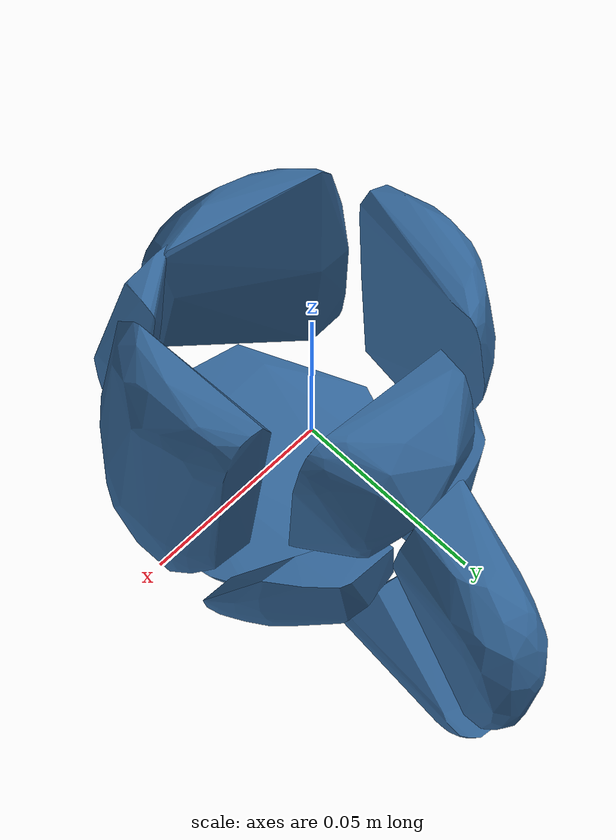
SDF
<?xml version='1.0' encoding='UTF-8'?>
<!-- This SDF was autogenerated by obj_to_drake_sdf.py -->
<sdf version="1.7">
  <model name="santa_mug">
    <link name="santa_mug">
      <inertial>
        <pose>0 0 0 0 0 0</pose>
        <mass>0.05</mass>
        <inertia>
          <ixx>0.00011838118</ixx>
          <iyy>9.1337501e-05</iyy>
          <izz>0.00011270443</izz>
          <ixy>-7.2985773e-06</ixy>
          <ixz>1.2802433e-06</ixz>
          <iyz>-7.5370098e-06</iyz>
        </inertia>
      </inertial>
      <visual name="convex_0">
        <pose>0 0 0 0 0 0</pose>
        <geometry>
          <mesh>
            <uri>santa_mug_convex_0.obj</uri>
          </mesh>
        </geometry>
        <material>
          <diffuse>0.19607843137254902 0.39215686274509803 0.5882352941176471 1</diffuse>
        </material>
      </visual>
      <collision name="convex_0_volume">
        <pose>0 0 0 0 0 0</pose>
        <geometry>
          <mesh>
            <uri>santa_mug_convex_0.obj</uri>
          </mesh>
        </geometry>
        <drake:proximity_properties xmlns:drake="uri:drake">
          <drake:compliant_hydroelastic/>
          <drake:hydroelastic_modulus> 3.0e7 </drake:hydroelastic_modulus>
          <drake:mesh_resolution_hint> 0.02 </drake:mesh_resolution_hint>
          <drake:hunt_crossley_dissipation>10</drake:hunt_crossley_dissipation>
          <drake:mu_dynamic>0.3</drake:mu_dynamic>
        </drake:proximity_properties>
      </collision>
      <visual name="convex_1">
        <pose>0 0 0 0 0 0</pose>
        <geometry>
          <mesh>
            <uri>santa_mug_convex_1.obj</uri>
          </mesh>
        </geometry>
        <material>
          <diffuse>0.19607843137254902 0.39215686274509803 0.5882352941176471 1</diffuse>
        </material>
      </visual>
      <collision name="convex_1_volume">
        <pose>0 0 0 0 0 0</pose>
        <geometry>
          <mesh>
            <uri>santa_mug_convex_1.obj</uri>
          </mesh>
        </geometry>
        <drake:proximity_properties xmlns:drake="uri:drake">
          <drake:compliant_hydroelastic/>
          <drake:hydroelastic_modulus> 3.0e7 </drake:hydroelastic_modulus>
          <drake:mesh_resolution_hint> 0.02 </drake:mesh_resolution_hint>
          <drake:hunt_crossley_dissipation>10</drake:hunt_crossley_dissipation>
          <drake:mu_dynamic>0.3</drake:mu_dynamic>
        </drake:proximity_properties>
      </collision>
      <visual name="convex_2">
        <pose>0 0 0 0 0 0</pose>
        <geometry>
          <mesh>
            <uri>santa_mug_convex_2.obj</uri>
          </mesh>
        </geometry>
        <material>
          <diffuse>0.19607843137254902 0.39215686274509803 0.5882352941176471 1</diffuse>
        </material>
      </visual>
      <collision name="convex_2_volume">
        <pose>0 0 0 0 0 0</pose>
        <geometry>
          <mesh>
            <uri>santa_mug_convex_2.obj</uri>
          </mesh>
        </geometry>
        <drake:proximity_properties xmlns:drake="uri:drake">
          <drake:compliant_hydroelastic/>
          <drake:hydroelastic_modulus> 3.0e7 </drake:hydroelastic_modulus>
          <drake:mesh_resolution_hint> 0.02 </drake:mesh_resolution_hint>
          <drake:hunt_crossley_dissipation>10</drake:hunt_crossley_dissipation>
          <drake:mu_dynamic>0.3</drake:mu_dynamic>
        </drake:proximity_properties>
      </collision>
      <visual name="convex_3">
        <pose>0 0 0 0 0 0</pose>
        <geometry>
          <mesh>
            <uri>santa_mug_convex_3.obj</uri>
          </mesh>
        </geometry>
        <material>
          <diffuse>0.19607843137254902 0.39215686274509803 0.5882352941176471 1</diffuse>
        </material>
      </visual>
      <collision name="convex_3_volume">
        <pose>0 0 0 0 0 0</pose>
        <geometry>
          <mesh>
            <uri>santa_mug_convex_3.obj</uri>
          </mesh>
        </geometry>
        <drake:proximity_properties xmlns:drake="uri:drake">
          <drake:compliant_hydroelastic/>
          <drake:hydroelastic_modulus> 3.0e7 </drake:hydroelastic_modulus>
          <drake:mesh_resolution_hint> 0.02 </drake:mesh_resolution_hint>
          <drake:hunt_crossley_dissipation>10</drake:hunt_crossley_dissipation>
          <drake:mu_dynamic>0.3</drake:mu_dynamic>
        </drake:proximity_properties>
      </collision>
      <visual name="convex_4">
        <pose>0 0 0 0 0 0</pose>
        <geometry>
          <mesh>
            <uri>santa_mug_convex_4.obj</uri>
          </mesh>
        </geometry>
        <material>
          <diffuse>0.19607843137254902 0.39215686274509803 0.5882352941176471 1</diffuse>
        </material>
      </visual>
      <collision name="convex_4_volume">
        <pose>0 0 0 0 0 0</pose>
        <geometry>
          <mesh>
            <uri>santa_mug_convex_4.obj</uri>
          </mesh>
        </geometry>
        <drake:proximity_properties xmlns:drake="uri:drake">
          <drake:compliant_hydroelastic/>
          <drake:hydroelastic_modulus> 3.0e7 </drake:hydroelastic_modulus>
          <drake:mesh_resolution_hint> 0.02 </drake:mesh_resolution_hint>
          <drake:hunt_crossley_dissipation>10</drake:hunt_crossley_dissipation>
          <drake:mu_dynamic>0.3</drake:mu_dynamic>
        </drake:proximity_properties>
      </collision>
      <visual name="convex_5">
        <pose>0 0 0 0 0 0</pose>
        <geometry>
          <mesh>
            <uri>santa_mug_convex_5.obj</uri>
          </mesh>
        </geometry>
        <material>
          <diffuse>0.19607843137254902 0.39215686274509803 0.5882352941176471 1</diffuse>
        </material>
      </visual>
      <collision name="convex_5_volume">
        <pose>0 0 0 0 0 0</pose>
        <geometry>
          <mesh>
            <uri>santa_mug_convex_5.obj</uri>
          </mesh>
        </geometry>
        <drake:proximity_properties xmlns:drake="uri:drake">
          <drake:compliant_hydroelastic/>
          <drake:hydroelastic_modulus> 3.0e7 </drake:hydroelastic_modulus>
          <drake:mesh_resolution_hint> 0.02 </drake:mesh_resolution_hint>
          <drake:hunt_crossley_dissipation>10</drake:hunt_crossley_dissipation>
          <drake:mu_dynamic>0.3</drake:mu_dynamic>
        </drake:proximity_properties>
      </collision>
      <visual name="convex_6">
        <pose>0 0 0 0 0 0</pose>
        <geometry>
          <mesh>
            <uri>santa_mug_convex_6.obj</uri>
          </mesh>
        </geometry>
        <material>
          <diffuse>0.19607843137254902 0.39215686274509803 0.5882352941176471 1</diffuse>
        </material>
      </visual>
      <collision name="convex_6_volume">
        <pose>0 0 0 0 0 0</pose>
        <geometry>
          <mesh>
            <uri>santa_mug_convex_6.obj</uri>
          </mesh>
        </geometry>
        <drake:proximity_properties xmlns:drake="uri:drake">
          <drake:compliant_hydroelastic/>
          <drake:hydroelastic_modulus> 3.0e7 </drake:hydroelastic_modulus>
          <drake:mesh_resolution_hint> 0.02 </drake:mesh_resolution_hint>
          <drake:hunt_crossley_dissipation>10</drake:hunt_crossley_dissipation>
          <drake:mu_dynamic>0.3</drake:mu_dynamic>
        </drake:proximity_properties>
      </collision>
      <visual name="convex_7">
        <pose>0 0 0 0 0 0</pose>
        <geometry>
          <mesh>
            <uri>santa_mug_convex_7.obj</uri>
          </mesh>
        </geometry>
        <material>
          <diffuse>0.19607843137254902 0.39215686274509803 0.5882352941176471 1</diffuse>
        </material>
      </visual>
      <collision name="convex_7_volume">
        <pose>0 0 0 0 0 0</pose>
        <geometry>
          <mesh>
            <uri>santa_mug_convex_7.obj</uri>
          </mesh>
        </geometry>
        <drake:proximity_properties xmlns:drake="uri:drake">
          <drake:compliant_hydroelastic/>
          <drake:hydroelastic_modulus> 3.0e7 </drake:hydroelastic_modulus>
          <drake:mesh_resolution_hint> 0.02 </drake:mesh_resolution_hint>
          <drake:hunt_crossley_dissipation>10</drake:hunt_crossley_dissipation>
          <drake:mu_dynamic>0.3</drake:mu_dynamic>
        </drake:proximity_properties>
      </collision>
      <visual name="convex_8">
        <pose>0 0 0 0 0 0</pose>
        <geometry>
          <mesh>
            <uri>santa_mug_convex_8.obj</uri>
          </mesh>
        </geometry>
        <material>
          <diffuse>0.19607843137254902 0.39215686274509803 0.5882352941176471 1</diffuse>
        </material>
      </visual>
      <collision name="convex_8_volume">
        <pose>0 0 0 0 0 0</pose>
        <geometry>
          <mesh>
            <uri>santa_mug_convex_8.obj</uri>
          </mesh>
        </geometry>
        <drake:proximity_properties xmlns:drake="uri:drake">
          <drake:compliant_hydroelastic/>
          <drake:hydroelastic_modulus> 3.0e7 </drake:hydroelastic_modulus>
          <drake:mesh_resolution_hint> 0.02 </drake:mesh_resolution_hint>
          <drake:hunt_crossley_dissipation>10</drake:hunt_crossley_dissipation>
          <drake:mu_dynamic>0.3</drake:mu_dynamic>
        </drake:proximity_properties>
      </collision>
      <visual name="convex_9">
        <pose>0 0 0 0 0 0</pose>
        <geometry>
          <mesh>
            <uri>santa_mug_convex_9.obj</uri>
          </mesh>
        </geometry>
        <material>
          <diffuse>0.19607843137254902 0.39215686274509803 0.5882352941176471 1</diffuse>
        </material>
      </visual>
      <collision name="convex_9_volume">
        <pose>0 0 0 0 0 0</pose>
        <geometry>
          <mesh>
            <uri>santa_mug_convex_9.obj</uri>
          </mesh>
        </geometry>
        <drake:proximity_properties xmlns:drake="uri:drake">
          <drake:compliant_hydroelastic/>
          <drake:hydroelastic_modulus> 3.0e7 </drake:hydroelastic_modulus>
          <drake:mesh_resolution_hint> 0.02 </drake:mesh_resolution_hint>
          <drake:hunt_crossley_dissipation>10</drake:hunt_crossley_dissipation>
          <drake:mu_dynamic>0.3</drake:mu_dynamic>
        </drake:proximity_properties>
      </collision>
    </link>
  </model>
</sdf>
